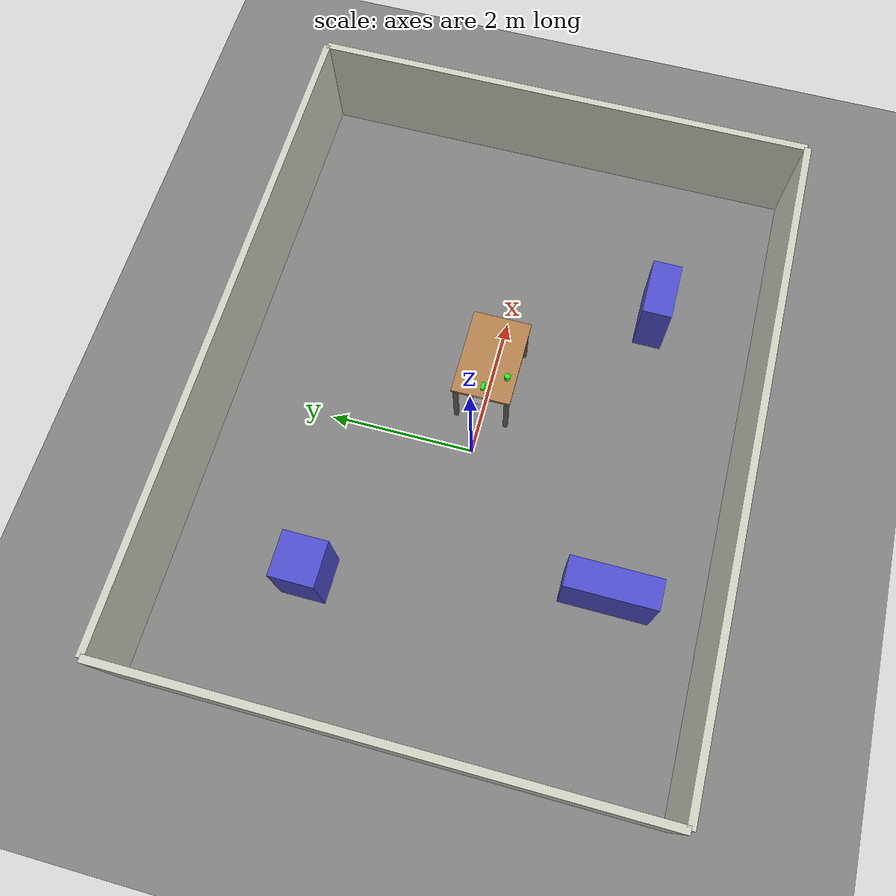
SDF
<?xml version="1.0" ?>
<sdf version="1.6">
  <world name="cart_xarm_world_offline">

    <model name="ground_plane">
      <static>true</static>
      <link name="link">
        <collision name="collision">
          <geometry><plane><normal>0 0 1</normal><size>20 20</size></plane></geometry>
          <surface><friction><ode><mu>1.0</mu><mu2>1.0</mu2></ode></friction></surface>
        </collision>
        <visual name="visual">
          <geometry><plane><normal>0 0 1</normal><size>20 20</size></plane></geometry>
          <material><ambient>0.4 0.4 0.4 1</ambient><diffuse>0.5 0.5 0.5 1</diffuse></material>
        </visual>
      </link>
    </model>

    <!-- Освещение: рассеянный свет сцены (тени светлее), яркое солнце и
         заполняющий источник с другой стороны без теней -->
    <scene>
      <ambient>0.6 0.6 0.6 1</ambient>
      <background>0.75 0.8 0.85 1</background>
      <shadows>true</shadows>
    </scene>

    <light type="directional" name="sun">
      <cast_shadows>true</cast_shadows>
      <pose>0 0 10 0 0 0</pose>
      <diffuse>1.0 1.0 1.0 1</diffuse>
      <specular>0.3 0.3 0.3 1</specular>
      <direction>-0.5 0.1 -0.9</direction>
    </light>

    <light type="directional" name="fill">
      <cast_shadows>false</cast_shadows>
      <pose>0 0 10 0 0 0</pose>
      <diffuse>0.5 0.5 0.5 1</diffuse>
      <specular>0.1 0.1 0.1 1</specular>
      <direction>0.6 -0.3 -0.7</direction>
    </light>

    <model name="table_simple">
      <static>true</static>
      <pose>1.05 0.0 0 0 0 0</pose>
      <link name="link">
        <!-- столешница: центр z=0.90, толщина 0.05 => верх 0.925 -->
        <visual name="top_visual">
          <pose>0 0 0.9 0 0 0</pose>
          <geometry><box><size>1.2 0.8 0.05</size></box></geometry>
          <material><ambient>0.6 0.4 0.2 1</ambient><diffuse>0.7 0.5 0.3 1</diffuse></material>
        </visual>
        <collision name="top_collision">
          <pose>0 0 0.9 0 0 0</pose>
          <geometry><box><size>1.2 0.8 0.05</size></box></geometry>
          <surface><friction><ode><mu>1.0</mu><mu2>1.0</mu2></ode></friction></surface>
        </collision>
        <!-- 4 ножки 0.06 x 0.06, от пола (z=0) до низа столешницы (z=0.875) -->
        <visual name="leg_fl_visual">
          <pose>0.55 0.35 0.4375 0 0 0</pose>
          <geometry><box><size>0.06 0.06 0.875</size></box></geometry>
          <material><ambient>0.3 0.3 0.3 1</ambient><diffuse>0.4 0.4 0.4 1</diffuse></material>
        </visual>
        <collision name="leg_fl_collision">
          <pose>0.55 0.35 0.4375 0 0 0</pose>
          <geometry><box><size>0.06 0.06 0.875</size></box></geometry>
        </collision>
        <visual name="leg_fr_visual">
          <pose>0.55 -0.35 0.4375 0 0 0</pose>
          <geometry><box><size>0.06 0.06 0.875</size></box></geometry>
          <material><ambient>0.3 0.3 0.3 1</ambient><diffuse>0.4 0.4 0.4 1</diffuse></material>
        </visual>
        <collision name="leg_fr_collision">
          <pose>0.55 -0.35 0.4375 0 0 0</pose>
          <geometry><box><size>0.06 0.06 0.875</size></box></geometry>
        </collision>
        <visual name="leg_bl_visual">
          <pose>-0.55 0.35 0.4375 0 0 0</pose>
          <geometry><box><size>0.06 0.06 0.875</size></box></geometry>
          <material><ambient>0.3 0.3 0.3 1</ambient><diffuse>0.4 0.4 0.4 1</diffuse></material>
        </visual>
        <collision name="leg_bl_collision">
          <pose>-0.55 0.35 0.4375 0 0 0</pose>
          <geometry><box><size>0.06 0.06 0.875</size></box></geometry>
        </collision>
        <visual name="leg_br_visual">
          <pose>-0.55 -0.35 0.4375 0 0 0</pose>
          <geometry><box><size>0.06 0.06 0.875</size></box></geometry>
          <material><ambient>0.3 0.3 0.3 1</ambient><diffuse>0.4 0.4 0.4 1</diffuse></material>
        </visual>
        <collision name="leg_br_collision">
          <pose>-0.55 -0.35 0.4375 0 0 0</pose>
          <geometry><box><size>0.06 0.06 0.875</size></box></geometry>
        </collision>
      </link>
    </model>

    <model name="pick_box">
      <pose>0.60 0.0 0.9505 0 0 0</pose>
      <!-- Публикует ТОЛЬКО позу модели (не всех звеньев мира) 10 Гц: этим пользуется
           vacuum_gripper_sim для проверки касания. Топик:
           /model/pick_box/pose (Pose_V) -->
      <plugin filename="gz-sim-pose-publisher-system" name="gz::sim::systems::PosePublisher">
        <publish_model_pose>true</publish_model_pose>
        <publish_link_pose>false</publish_link_pose>
        <publish_collision_pose>false</publish_collision_pose>
        <publish_visual_pose>false</publish_visual_pose>
        <publish_sensor_pose>false</publish_sensor_pose>
        <use_pose_vector_msg>true</use_pose_vector_msg>
        <update_frequency>10</update_frequency>
      </plugin>
      <link name="link">
        <inertial>
          <mass>0.1</mass>
          <inertia>
            <ixx>4.1667e-5</ixx><iyy>1.0417e-4</iyy><izz>1.0417e-4</izz>
            <ixy>0</ixy><ixz>0</ixz><iyz>0</iyz>
          </inertia>
        </inertial>
        <visual name="visual">
          <geometry><box><size>0.10 0.05 0.05</size></box></geometry>
          <material><ambient>0.1 1.0 0.1 1</ambient><diffuse>0.1 1.0 0.1 1</diffuse><emissive>0.0 0.35 0.0 1</emissive></material>
        </visual>
        <collision name="collision">
          <geometry><box><size>0.10 0.05 0.05</size></box></geometry>
          <surface><friction><ode><mu>1.0</mu><mu2>1.0</mu2></ode></friction></surface>
        </collision>
      </link>
    </model>

    <!-- Цилиндрический блок (r=0.04, h=0.09) — прежний объект, теперь стоит НА столешнице
         (раньше парил на 5 см над ней) сбоку от pick_box; static. -->
    <model name="cylinder_block">
      <static>true</static>
      <pose>0.80 -0.28 0.9705 0 0 0</pose>
      <link name="link">
        <visual name="visual">
          <geometry><cylinder><radius>0.04</radius><length>0.09</length></cylinder></geometry>
          <material><ambient>0.1 1.0 0.1 1</ambient><diffuse>0.1 1.0 0.1 1</diffuse><emissive>0.0 0.35 0.0 1</emissive></material>
        </visual>
        <collision name="collision">
          <geometry><cylinder><radius>0.04</radius><length>0.09</length></cylinder></geometry>
        </collision>
      </link>
    </model>

    <physics name="1ms" type="ode">
      <max_step_size>0.001</max_step_size>
      <real_time_factor>1</real_time_factor>
      <real_time_update_rate>1000</real_time_update_rate>
    </physics>

    <plugin filename="gz-sim-physics-system" name="gz::sim::systems::Physics"/>
    <plugin filename="gz-sim-user-commands-system" name="gz::sim::systems::UserCommands"/>
    <plugin filename="gz-sim-scene-broadcaster-system" name="gz::sim::systems::SceneBroadcaster"/>
    <!-- Сенсоры (камера гриппера); /clock публикует сам gz sim, не этот плагин -->
    <plugin filename="gz-sim-sensors-system" name="gz::sim::systems::Sensors">
      <render_engine>ogre2</render_engine>
    </plugin>

    <!-- Комната для навигации (cart_nav_gz.launch.py): стены 9x7 м и препятствия
         на высоте лидара (0.43 м) -->
    <model name="wall_north">
      <static>true</static>
      <pose>0.5 3.5 0.75 0 0 0</pose>
      <link name="link">
        <collision name="collision"><geometry><box><size>9.0 0.1 1.5</size></box></geometry></collision>
        <visual name="visual"><geometry><box><size>9.0 0.1 1.5</size></box></geometry>
          <material><ambient>0.8 0.8 0.75 1</ambient><diffuse>0.8 0.8 0.75 1</diffuse></material></visual>
      </link>
    </model>
    <model name="wall_south">
      <static>true</static>
      <pose>0.5 -3.5 0.75 0 0 0</pose>
      <link name="link">
        <collision name="collision"><geometry><box><size>9.0 0.1 1.5</size></box></geometry></collision>
        <visual name="visual"><geometry><box><size>9.0 0.1 1.5</size></box></geometry>
          <material><ambient>0.8 0.8 0.75 1</ambient><diffuse>0.8 0.8 0.75 1</diffuse></material></visual>
      </link>
    </model>
    <model name="wall_west">
      <static>true</static>
      <pose>-4.0 0 0.75 0 0 0</pose>
      <link name="link">
        <collision name="collision"><geometry><box><size>0.1 7.0 1.5</size></box></geometry></collision>
        <visual name="visual"><geometry><box><size>0.1 7.0 1.5</size></box></geometry>
          <material><ambient>0.8 0.8 0.75 1</ambient><diffuse>0.8 0.8 0.75 1</diffuse></material></visual>
      </link>
    </model>
    <model name="wall_east">
      <static>true</static>
      <pose>5.0 0 0.75 0 0 0</pose>
      <link name="link">
        <collision name="collision"><geometry><box><size>0.1 7.0 1.5</size></box></geometry></collision>
        <visual name="visual"><geometry><box><size>0.1 7.0 1.5</size></box></geometry>
          <material><ambient>0.8 0.8 0.75 1</ambient><diffuse>0.8 0.8 0.75 1</diffuse></material></visual>
      </link>
    </model>
    <model name="obstacle_1">
      <static>true</static>
      <pose>-2.2 1.6 0.5 0 0 0</pose>
      <link name="link">
        <collision name="collision"><geometry><box><size>0.6 0.6 1.0</size></box></geometry></collision>
        <visual name="visual"><geometry><box><size>0.6 0.6 1.0</size></box></geometry>
          <material><ambient>0.3 0.3 0.8 1</ambient><diffuse>0.3 0.3 0.8 1</diffuse></material></visual>
      </link>
    </model>
    <model name="obstacle_2">
      <static>true</static>
      <pose>2.6 -2.0 0.5 0 0 0</pose>
      <link name="link">
        <collision name="collision"><geometry><box><size>0.8 0.4 1.0</size></box></geometry></collision>
        <visual name="visual"><geometry><box><size>0.8 0.4 1.0</size></box></geometry>
          <material><ambient>0.3 0.3 0.8 1</ambient><diffuse>0.3 0.3 0.8 1</diffuse></material></visual>
      </link>
    </model>
    <model name="obstacle_3">
      <static>true</static>
      <pose>-1.5 -2.2 0.5 0 0 0</pose>
      <link name="link">
        <collision name="collision"><geometry><box><size>0.4 1.2 1.0</size></box></geometry></collision>
        <visual name="visual"><geometry><box><size>0.4 1.2 1.0</size></box></geometry>
          <material><ambient>0.3 0.3 0.8 1</ambient><diffuse>0.3 0.3 0.8 1</diffuse></material></visual>
      </link>
    </model>
    <!-- ARUCO BEGIN (генерирует tools/gen_aruco_marker.py, руками не править) -->
    <model name="aruco_dock">
      <static>true</static>
      <pose>0.444 0.0 0.8 0 0 0</pose>
      <link name="link">
        <visual name="board">
          <pose>0.003 0 0 0 0 0</pose>
          <geometry><box><size>0.006 0.2 0.2</size></box></geometry>
          <material><ambient>1 1 1 1</ambient><diffuse>1 1 1 1</diffuse></material>
        </visual>
        <visual name="marker">
          <pose>-0.0005 0 0 0 0 0</pose>
          <geometry><plane><normal>-1 0 0</normal><size>0.2 0.2</size></plane></geometry>
          <material>
            <ambient>1 1 1 1</ambient><diffuse>1 1 1 1</diffuse><specular>0 0 0 1</specular>
            <pbr><metal><albedo_map>materials/aruco_4x4_50_0.png</albedo_map><roughness>1.0</roughness><metalness>0.0</metalness></metal></pbr>
          </material>
        </visual>
      </link>
    </model>
    <!-- ARUCO END -->

  </world>
</sdf>
